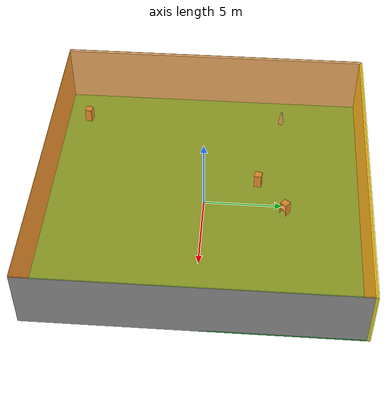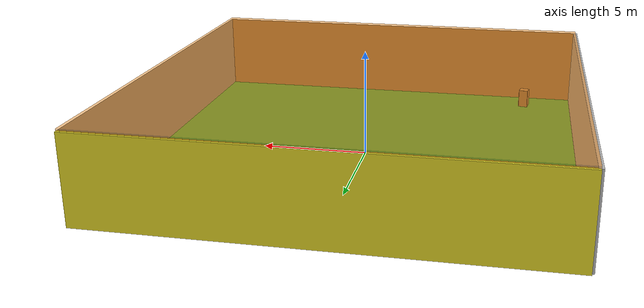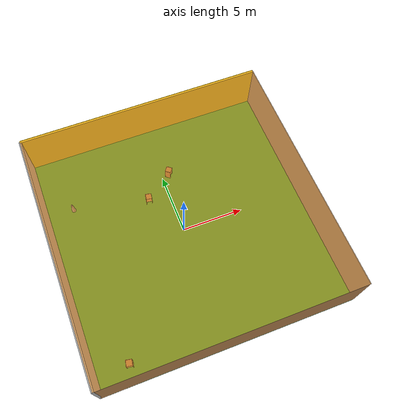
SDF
<sdf version="1.4">
 <world name="default">
  <physics type="ode">
   <max_step_size>0.001</max_step_size>
   <real_time_factor>1</real_time_factor>
   <real_time_update_rate>1000</real_time_update_rate>
   <gravity>0 0 -9.8</gravity>
  </physics>
  <scene><ambient>0.4 0.4 0.4 1</ambient><background>0.7 0.7 0.7 1</background><shadows>1</shadows></scene>
  <model name="Surrounding">
   <static>1</static>
   <link name="Ceiling">
    <collision name="Ceiling_Collision"><geometry><box><size>20 20 0.1</size></box></geometry></collision>
    <visual name="Ceiling_Visual">
     <geometry><box><size>20 20 0.1</size></box></geometry>
     <material>
      <script>
       <uri>file://media/materials/scripts/gazebo.material</uri>
       <name>Gazebo/OrangeTransparent</name>
      </script>
     </material>
    </visual>
    <pose>0 0 4.05 0 0 0</pose>
   </link>
   <link name="Wall_South">
    <collision name="Wall_South_Collision">
     <geometry><box><size>20 0 4</size></box></geometry>
     <pose>0 0 2 0 -0 0</pose>
    </collision>
    <visual name="Wall_South_Visual">
     <pose>0 0 2 0 -0 0</pose>
     <geometry><box><size>20 0 4</size></box></geometry>
     <material>
      <script><uri>file://media/materials/scripts/gazebo.material</uri><name>Gazebo/WoodPallet</name></script>
     </material>
    </visual>
    <velocity_decay><linear>0</linear><angular>0</angular></velocity_decay>
    <pose>0 -10 0 0 -0 0</pose>
   </link>
   <link name="Wall_East">
    <collision name="Wall_21_Collision">
     <geometry><box><size>20 0 4</size></box></geometry>
     <pose>0 0 2 0 -0 0</pose>
    </collision>
    <visual name="Wall_21_Visual">
     <pose>0 0 2 0 -0 0</pose>
     <geometry><box><size>20 0 4</size></box></geometry>
     <material>
      <script><uri>file://media/materials/scripts/gazebo.material</uri><name>Gazebo/GreyGradientSky</name></script>
     </material>
    </visual>
    <velocity_decay><linear>0</linear><angular>0</angular></velocity_decay>
    <pose>10 0 0 0 -0 1.5708</pose>
   </link>
   <link name="Wall_North">
    <collision name="Wall_22_Collision">
     <geometry><box><size>20 0.2 4</size></box></geometry>
     <pose>0 0 2 0 -0 0</pose>
    </collision>
    <visual name="Wall_22_Visual">
     <pose>0 0 2 0 -0 0</pose>
     <geometry><box><size>20 0.2 4</size></box></geometry>
     <material>
      <script><uri>file://media/materials/scripts/gazebo.material</uri><name>Gazebo/Yellow</name></script>
     </material>
    </visual>
    <velocity_decay><linear>0</linear><angular>0</angular></velocity_decay>
    <pose>0 10 0 0 -0 0</pose>
   </link>
   <link name="Wall_West">
    <collision name="Wall_23_Collision">
     <geometry><box><size>20 0.2 4</size></box></geometry>
     <pose>0 0 2 0 -0 0</pose>
    </collision>
    <visual name="Wall_23_Visual">
     <pose>0 0 2 0 -0 0</pose>
     <geometry><box><size>20 0.2 4</size></box></geometry>
     <material>
      <script><uri>file://media/materials/scripts/gazebo.material</uri><name>Gazebo/LightOff</name></script>
     </material>
    </visual>
    <velocity_decay><linear>0</linear><angular>0</angular></velocity_decay>
    <pose>-10 0 0 0 0 -1.5708</pose>
   </link>
   <link name="Ground_link">
    <collision name="collision">
     <pose>0 0 .05 0 -0 0</pose>
     <geometry><box><size>20 20 0.1</size></box></geometry>
    </collision>
    <visual name="visual">
     <pose>0 0 .05 0 -0 0</pose>
     <geometry><box><size>20 20 0.1</size></box></geometry>
     <material>
      <script><uri>file://media/materials/scripts/gazebo.material</uri><name>Gazebo/Green</name></script>
     </material>
    </visual>
   </link>
   <static>1</static>
  </model>
  <spherical_coordinates>
   <surface_model>EARTH_WGS84</surface_model>
   <latitude_deg>0</latitude_deg>
   <longitude_deg>0</longitude_deg>
   <elevation>0</elevation>
   <heading_deg>0</heading_deg>
  </spherical_coordinates>
  <light name="lightball_0" type="diffuse">
   <diffuse>0.8 0.8 0.8 1</diffuse>
   <specular>0.2 0.2 0.2 1</specular>
   <attenuation>
    <range>100</range>
    <constant>0.7</constant>
    <linear>0.01</linear>
    <quadratic>0.001</quadratic>
   </attenuation>
   <direction>-0.5 0.1 -0.9</direction>
   <pose>2.69469589285 -6.5237423213 2.70690292768 0 0 0</pose>
  </light>
  <light name="lightball_1" type="diffuse">
   <diffuse>0.8 0.8 0.8 1</diffuse>
   <specular>0.2 0.2 0.2 1</specular>
   <attenuation>
    <range>100</range>
    <constant>0.7</constant>
    <linear>0.01</linear>
    <quadratic>0.001</quadratic>
   </attenuation>
   <direction>-0.5 0.1 -0.9</direction>
   <pose>0.817716152637 -5.20061036809 2.21641574888 0 0 0</pose>
  </light>
  <light name="lightball_2" type="diffuse">
   <diffuse>0.8 0.8 0.8 1</diffuse>
   <specular>0.2 0.2 0.2 1</specular>
   <attenuation>
    <range>100</range>
    <constant>0.7</constant>
    <linear>0.01</linear>
    <quadratic>0.001</quadratic>
   </attenuation>
   <direction>-0.5 0.1 -0.9</direction>
   <pose>0.448106018592 0.595668947402 2.92349077658 0 0 0</pose>
  </light>
  <light name="lightball_3" type="diffuse">
   <diffuse>0.8 0.8 0.8 1</diffuse>
   <specular>0.2 0.2 0.2 1</specular>
   <attenuation>
    <range>100</range>
    <constant>0.7</constant>
    <linear>0.01</linear>
    <quadratic>0.001</quadratic>
   </attenuation>
   <direction>-0.5 0.1 -0.9</direction>
   <pose>3.93757077222 7.82101778864 1.78723844033 0 0 0</pose>
  </light>
  <light name="lightball_4" type="diffuse">
   <diffuse>0.8 0.8 0.8 1</diffuse>
   <specular>0.2 0.2 0.2 1</specular>
   <attenuation>
    <range>100</range>
    <constant>0.7</constant>
    <linear>0.01</linear>
    <quadratic>0.001</quadratic>
   </attenuation>
   <direction>-0.5 0.1 -0.9</direction>
   <pose>-2.85820103731 5.28508600314 2.33680099141 0 0 0</pose>
  </light>
  <light name="lightball_5" type="diffuse">
   <diffuse>0.8 0.8 0.8 1</diffuse>
   <specular>0.2 0.2 0.2 1</specular>
   <attenuation>
    <range>100</range>
    <constant>0.7</constant>
    <linear>0.01</linear>
    <quadratic>0.001</quadratic>
   </attenuation>
   <direction>-0.5 0.1 -0.9</direction>
   <pose>2.51084652398 3.5731404274 1.71191202659 0 0 0</pose>
  </light>
  <light name="lightball_6" type="diffuse">
   <diffuse>0.8 0.8 0.8 1</diffuse>
   <specular>0.2 0.2 0.2 1</specular>
   <attenuation>
    <range>100</range>
    <constant>0.7</constant>
    <linear>0.01</linear>
    <quadratic>0.001</quadratic>
   </attenuation>
   <direction>-0.5 0.1 -0.9</direction>
   <pose>-6.95000965727 -8.17052144164 1.65932370931 0 0 0</pose>
  </light>
  <light name="lightball_7" type="diffuse">
   <diffuse>0.8 0.8 0.8 1</diffuse>
   <specular>0.2 0.2 0.2 1</specular>
   <attenuation>
    <range>100</range>
    <constant>0.7</constant>
    <linear>0.01</linear>
    <quadratic>0.001</quadratic>
   </attenuation>
   <direction>-0.5 0.1 -0.9</direction>
   <pose>7.59560806174 -9.85312942053 3.73432102457 0 0 0</pose>
  </light>
  <light name="lightball_8" type="diffuse">
   <diffuse>0.8 0.8 0.8 1</diffuse>
   <specular>0.2 0.2 0.2 1</specular>
   <attenuation>
    <range>100</range>
    <constant>0.7</constant>
    <linear>0.01</linear>
    <quadratic>0.001</quadratic>
   </attenuation>
   <direction>-0.5 0.1 -0.9</direction>
   <pose>-5.14319677105 1.20164182412 3.78069909745 0 0 0</pose>
  </light>
  <light name="lightball_9" type="diffuse">
   <diffuse>0.8 0.8 0.8 1</diffuse>
   <specular>0.2 0.2 0.2 1</specular>
   <attenuation>
    <range>100</range>
    <constant>0.7</constant>
    <linear>0.01</linear>
    <quadratic>0.001</quadratic>
   </attenuation>
   <direction>-0.5 0.1 -0.9</direction>
   <pose>1.63416499055 8.9411716629 1.06685335765 0 0 0</pose>
  </light>
  <light name="lightball_10" type="diffuse">
   <diffuse>0.8 0.8 0.8 1</diffuse>
   <specular>0.2 0.2 0.2 1</specular>
   <attenuation>
    <range>100</range>
    <constant>0.7</constant>
    <linear>0.01</linear>
    <quadratic>0.001</quadratic>
   </attenuation>
   <direction>-0.5 0.1 -0.9</direction>
   <pose>-4.04138849051 7.2634203136 2.96907667576 0 0 0</pose>
  </light>
  <include><uri>model://cabinet</uri><pose>-7.40440887429 -8.54810283958 0 0 0 1.38783264493</pose></include>
  <include>
   <uri>model://construction_cone</uri>
   <pose>-7.84192630609 4.80511803988 0 0 0 0.507016267694</pose>
  </include>
  <include><uri>model://cabinet</uri><pose>-1.78789401947 3.38398724475 0 0 0 1.42631973751</pose></include>
  <include><uri>model://cabinet</uri><pose>0.602889494182 5.16927287476 0 0 0 2.46060621388</pose></include>
 </world>
</sdf>

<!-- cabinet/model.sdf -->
<sdf version="1.5">
  <model name="cabinet">
    <static>true</static>
    <link name="cabinet_bottom_plate">
      <inertial>
        <pose>0 0 -1 0 0 0</pose>
        <inertia>
          <ixx>2.050000</ixx>
          <ixy>0</ixy>
          <ixz>0</ixz>
          <iyy>2.050000</iyy>
          <iyz>0</iyz>
          <izz>2.050000</izz>
        </inertia>
        <mass>25.000000</mass>
      </inertial>
      <collision name="cabinet_bottom_plate_geom">
        <pose>0 0 0.010000 0 0 0</pose>
        <geometry>
          <box>
            <size>0.450000 0.450000 0.020000</size>
          </box>
        </geometry>
      </collision>
      <visual name="cabinet_bottom_plate_geom_visual">
        <pose>0 0 0.010000 0 0 0</pose>
        <geometry>
          <box>
            <size>0.450000 0.450000 0.020000</size>
          </box>
        </geometry>
        <material>
          <script>
            <uri>model://media/materials/scripts/gazebo.material</uri>
            <name>Gazebo/Wood</name>
          </script>
        </material>
      </visual>
      <collision name="cabinet_bottom_plate_geom_cabinet_back_plate">
        <pose>0.235000 0 0.510000 0 0 0</pose>
        <geometry>
          <box>
            <size>0.020000 0.450000 1.020000</size>
          </box>
        </geometry>
      </collision>
      <visual name="cabinet_bottom_plate_geom_cabinet_back_plate_visual">
        <pose>0.235000 0 0.510000 0 0 0</pose>
        <geometry>
          <box>
            <size>0.020000 0.450000 1.020000</size>
          </box>
        </geometry>
        <material>
          <script>
            <uri>model://media/materials/scripts/gazebo.material</uri>
            <name>Gazebo/Wood</name>
          </script>
        </material>
      </visual>
      <collision name="cabinet_bottom_plate_geom_cabinet_left_plate">
        <pose>0 0.235000 0.510000 0 0 0</pose>
        <geometry>
          <box>
            <size>0.450000 0.020000 1.020000</size>
          </box>
        </geometry>
      </collision>
      <visual name="cabinet_bottom_plate_geom_cabinet_left_plate_visual">
        <pose>0 0.235000 0.510000 0 0 0</pose>
        <geometry>
          <box>
            <size>0.450000 0.020000 1.020000</size>
          </box>
        </geometry>
        <material>
          <script>
            <uri>model://media/materials/scripts/gazebo.material</uri>
            <name>Gazebo/Wood</name>
          </script>
        </material>
      </visual>
      <collision name="cabinet_bottom_plate_geom_cabinet_middle_plate">
        <pose>0 0 0.510000 0 0 0</pose>
        <geometry>
          <box>
            <size>0.450000 0.450000 0.020000</size>
          </box>
        </geometry>
      </collision>
      <visual name="cabinet_bottom_plate_geom_cabinet_middle_plate_visual">
        <pose>0 0 0.510000 0 0 0</pose>
        <geometry>
          <box>
            <size>0.450000 0.450000 0.020000</size>
          </box>
        </geometry>
        <material>
          <script>
            <uri>model://media/materials/scripts/gazebo.material</uri>
            <name>Gazebo/Wood</name>
          </script>
        </material>
      </visual>
      <collision name="cabinet_bottom_plate_geom_cabinet_right_plate">
        <pose>0 -0.235000 0.510000 0 0 0</pose>
        <geometry>
          <box>
            <size>0.450000 0.020000 1.020000</size>
          </box>
        </geometry>
      </collision>
      <visual name="cabinet_bottom_plate_geom_cabinet_right_plate_visual">
        <pose>0 -0.235000 0.510000 0 0 0</pose>
        <geometry>
          <box>
            <size>0.450000 0.020000 1.020000</size>
          </box>
        </geometry>
        <material>
          <script>
            <uri>model://media/materials/scripts/gazebo.material</uri>
            <name>Gazebo/Wood</name>
          </script>
        </material>
      </visual>
      <collision name="cabinet_bottom_plate_geom_cabinet_top_plate">
        <pose>0 0 1.010000 0 0 0</pose>
        <geometry>
          <box>
            <size>0.450000 0.450000 0.020000</size>
          </box>
        </geometry>
      </collision>
      <visual name="cabinet_bottom_plate_geom_cabinet_top_plate_visual">
        <pose>0 0 1.010000 0 0 0</pose>
        <geometry>
          <box>
            <size>0.450000 0.450000 0.020000</size>
          </box>
        </geometry>
        <material>
          <script>
            <uri>model://media/materials/scripts/gazebo.material</uri>
            <name>Gazebo/Wood</name>
          </script>
        </material>
      </visual>
    </link>
  </model>
</sdf>

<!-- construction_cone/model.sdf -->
<sdf version="1.5">
  <model name="Construction Cone">
    <link name="link">
      <collision name="collision">
        <geometry>
          <mesh>
            <scale>10 10 10</scale>
            <uri>file://isr-testbed/construction_cone/meshes/construction_cone.dae</uri>
          </mesh>
        </geometry>
      </collision>
      <visual name="visual">
        <geometry>
          <mesh>
            <scale>10 10 10</scale>
            <uri>file://isr-testbed/construction_cone/meshes/construction_cone.dae</uri>
          </mesh>
        </geometry>
      </visual>
    </link>
  </model>
</sdf>
